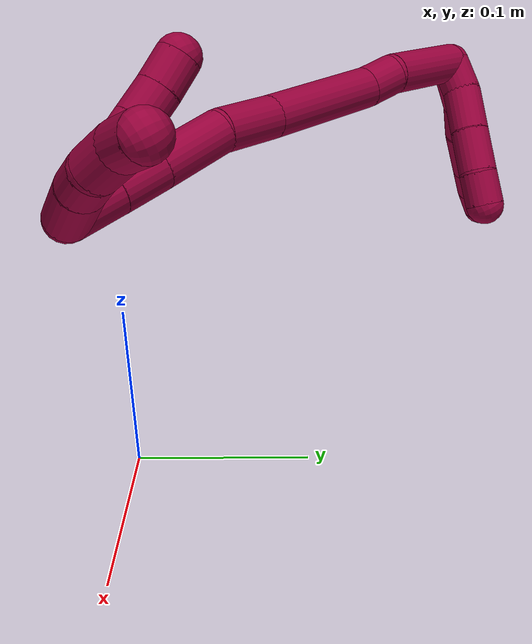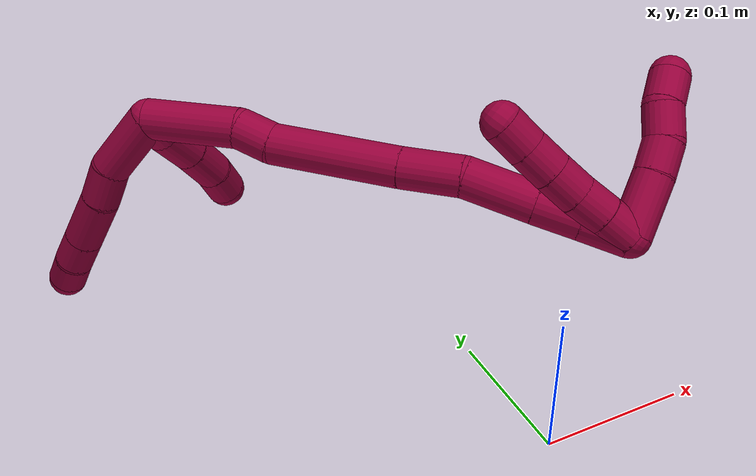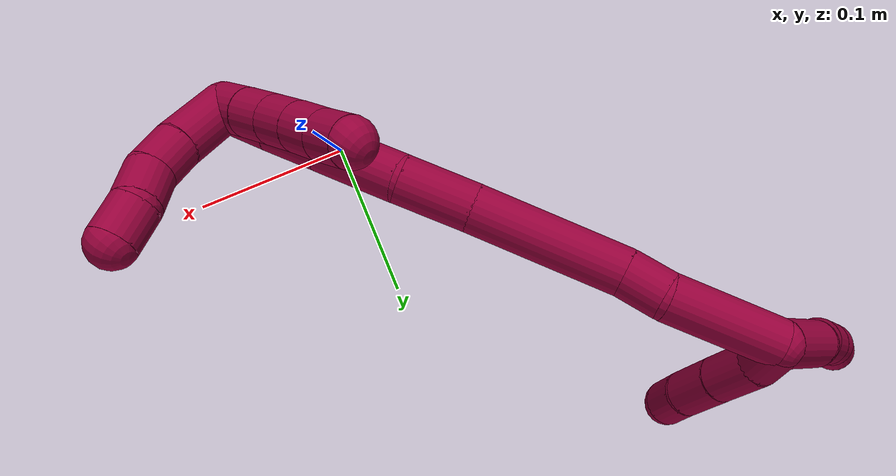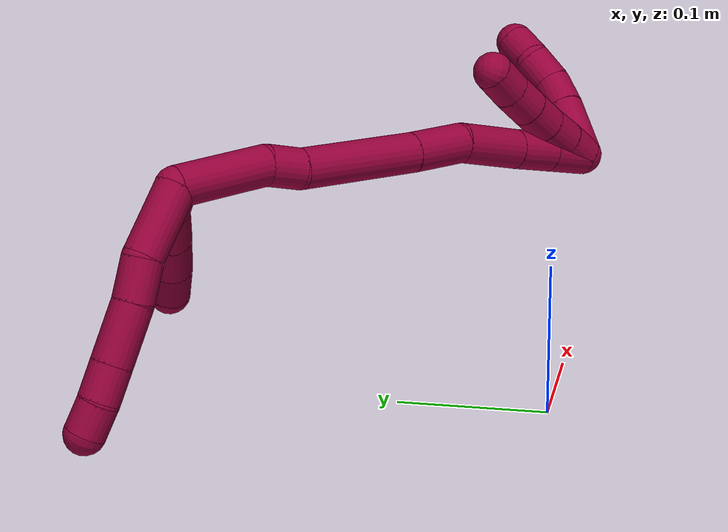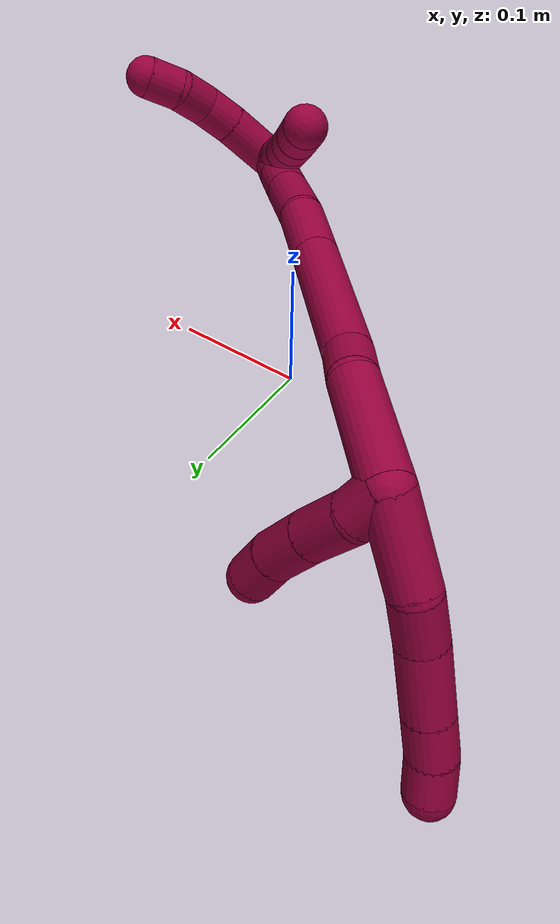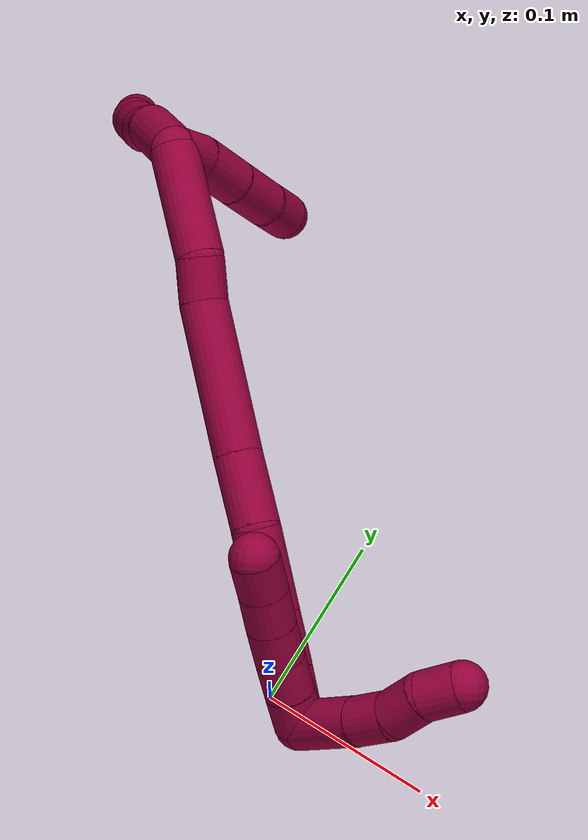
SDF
<sdf version="1.7">
 <world name="default">
  <model name="8">
   <static>0</static>
   <link name="8">
    <collision name="collision-cylinder-e_1_2_8">
     <pose>-0.013922 0.017207 0.004827 -1.29732 -0.661832 0.509562</pose>
     <geometry><cylinder><radius>0.0125</radius><length>0.045308</length></cylinder></geometry>
     <surface>
      <friction><ode><mu>1.16</mu><mu2>1.16</mu2><slip1>0</slip1><slip2>0</slip2></ode></friction>
      <contact><ode><kp>1e+06</kp><kd>1</kd><max_vel>0</max_vel><min_depth>0.001</min_depth></ode></contact>
     </surface>
    </collision>
    <visual name="visual-cylinder-e_1_2_8">
     <pose>-0.013922 0.017207 0.004827 -1.29732 -0.661832 0.509562</pose>
     <geometry><cylinder><radius>0.0125</radius><length>0.045308</length></cylinder></geometry>
     <material><ambient>0.584314 0 0.227451 1</ambient></material>
    </visual>
    <collision name="collision-cylinder-e_2_8_9">
     <pose>-0.034626 0.045399 0.009109 -1.6203 -0.55249 0.579031</pose>
     <geometry><cylinder><radius>0.0125</radius><length>0.025842</length></cylinder></geometry>
     <surface>
      <friction><ode><mu>1.16</mu><mu2>1.16</mu2><slip1>0</slip1><slip2>0</slip2></ode></friction>
      <contact><ode><kp>1e+06</kp><kd>1</kd><max_vel>0</max_vel><min_depth>0.001</min_depth></ode></contact>
     </surface>
    </collision>
    <visual name="visual-cylinder-e_2_8_9">
     <pose>-0.034626 0.045399 0.009109 -1.6203 -0.55249 0.579031</pose>
     <geometry><cylinder><radius>0.0125</radius><length>0.025842</length></cylinder></geometry>
     <material><ambient>0.584314 0 0.227451 1</ambient></material>
    </visual>
    <collision name="collision-cylinder-e_3_9_10">
     <pose>-0.050398 0.072285 0.009839 -1.49083 -0.513279 0.475319</pose>
     <geometry><cylinder><radius>0.0125</radius><length>0.036624</length></cylinder></geometry>
     <surface>
      <friction><ode><mu>1.16</mu><mu2>1.16</mu2><slip1>0</slip1><slip2>0</slip2></ode></friction>
      <contact><ode><kp>1e+06</kp><kd>1</kd><max_vel>0</max_vel><min_depth>0.001</min_depth></ode></contact>
     </surface>
    </collision>
    <visual name="visual-cylinder-e_3_9_10">
     <pose>-0.050398 0.072285 0.009839 -1.49083 -0.513279 0.475319</pose>
     <geometry><cylinder><radius>0.0125</radius><length>0.036624</length></cylinder></geometry>
     <material><ambient>0.584314 0 0.227451 1</ambient></material>
    </visual>
    <collision name="collision-cylinder-e_4_10_11">
     <pose>-0.06484 0.097829 0.011887 -1.49075 -0.513045 0.475064</pose>
     <geometry><cylinder><radius>0.0125</radius><length>0.022206</length></cylinder></geometry>
     <surface>
      <friction><ode><mu>1.16</mu><mu2>1.16</mu2><slip1>0</slip1><slip2>0</slip2></ode></friction>
      <contact><ode><kp>1e+06</kp><kd>1</kd><max_vel>0</max_vel><min_depth>0.001</min_depth></ode></contact>
     </surface>
    </collision>
    <visual name="visual-cylinder-e_4_10_11">
     <pose>-0.06484 0.097829 0.011887 -1.49075 -0.513045 0.475064</pose>
     <geometry><cylinder><radius>0.0125</radius><length>0.022206</length></cylinder></geometry>
     <material><ambient>0.584314 0 0.227451 1</ambient></material>
    </visual>
    <collision name="collision-cylinder-e_5_11_6">
     <pose>-0.073844 0.116776 0.013652 -1.46467 -0.363049 0.327112</pose>
     <geometry><cylinder><radius>0.0125</radius><length>0.020021</length></cylinder></geometry>
     <surface>
      <friction><ode><mu>1.16</mu><mu2>1.16</mu2><slip1>0</slip1><slip2>0</slip2></ode></friction>
      <contact><ode><kp>1e+06</kp><kd>1</kd><max_vel>0</max_vel><min_depth>0.001</min_depth></ode></contact>
     </surface>
    </collision>
    <visual name="visual-cylinder-e_5_11_6">
     <pose>-0.073844 0.116776 0.013652 -1.46467 -0.363049 0.327112</pose>
     <geometry><cylinder><radius>0.0125</radius><length>0.020021</length></cylinder></geometry>
     <material><ambient>0.584314 0 0.227451 1</ambient></material>
    </visual>
    <collision name="collision-cylinder-e_1_2_12">
     <pose>0.003181 0.00976 -0.001932 -1.76622 0.30941 -0.375229</pose>
     <geometry><cylinder><radius>0.0125</radius><length>0.020891</length></cylinder></geometry>
     <surface>
      <friction><ode><mu>1.16</mu><mu2>1.16</mu2><slip1>0</slip1><slip2>0</slip2></ode></friction>
      <contact><ode><kp>1e+06</kp><kd>1</kd><max_vel>0</max_vel><min_depth>0.001</min_depth></ode></contact>
     </surface>
    </collision>
    <visual name="visual-cylinder-e_1_2_12">
     <pose>0.003181 0.00976 -0.001932 -1.76622 0.30941 -0.375229</pose>
     <geometry><cylinder><radius>0.0125</radius><length>0.020891</length></cylinder></geometry>
     <material><ambient>0.584314 0 0.227451 1</ambient></material>
    </visual>
    <collision name="collision-cylinder-e_2_12_13">
     <pose>0.011496 0.03159 -0.009774 -2.02617 0.364958 -0.575262</pose>
     <geometry><cylinder><radius>0.0125</radius><length>0.028773</length></cylinder></geometry>
     <surface>
      <friction><ode><mu>1.16</mu><mu2>1.16</mu2><slip1>0</slip1><slip2>0</slip2></ode></friction>
      <contact><ode><kp>1e+06</kp><kd>1</kd><max_vel>0</max_vel><min_depth>0.001</min_depth></ode></contact>
     </surface>
    </collision>
    <visual name="visual-cylinder-e_2_12_13">
     <pose>0.011496 0.03159 -0.009774 -2.02617 0.364958 -0.575262</pose>
     <geometry><cylinder><radius>0.0125</radius><length>0.028773</length></cylinder></geometry>
     <material><ambient>0.584314 0 0.227451 1</ambient></material>
    </visual>
    <collision name="collision-cylinder-e_3_13_14">
     <pose>0.021063 0.055971 -0.021198 -1.99185 0.317469 -0.484478</pose>
     <geometry><cylinder><radius>0.0125</radius><length>0.028399</length></cylinder></geometry>
     <surface>
      <friction><ode><mu>1.16</mu><mu2>1.16</mu2><slip1>0</slip1><slip2>0</slip2></ode></friction>
      <contact><ode><kp>1e+06</kp><kd>1</kd><max_vel>0</max_vel><min_depth>0.001</min_depth></ode></contact>
     </surface>
    </collision>
    <visual name="visual-cylinder-e_3_13_14">
     <pose>0.021063 0.055971 -0.021198 -1.99185 0.317469 -0.484478</pose>
     <geometry><cylinder><radius>0.0125</radius><length>0.028399</length></cylinder></geometry>
     <material><ambient>0.584314 0 0.227451 1</ambient></material>
    </visual>
    <collision name="collision-cylinder-e_4_14_5">
     <pose>0.02755 0.078485 -0.030175 -1.89798 0.188439 -0.262216</pose>
     <geometry><cylinder><radius>0.0125</radius><length>0.021937</length></cylinder></geometry>
     <surface>
      <friction><ode><mu>1.16</mu><mu2>1.16</mu2><slip1>0</slip1><slip2>0</slip2></ode></friction>
      <contact><ode><kp>1e+06</kp><kd>1</kd><max_vel>0</max_vel><min_depth>0.001</min_depth></ode></contact>
     </surface>
    </collision>
    <visual name="visual-cylinder-e_4_14_5">
     <pose>0.02755 0.078485 -0.030175 -1.89798 0.188439 -0.262216</pose>
     <geometry><cylinder><radius>0.0125</radius><length>0.021937</length></cylinder></geometry>
     <material><ambient>0.584314 0 0.227451 1</ambient></material>
    </visual>
    <collision name="collision-cylinder-e_1_2_15">
     <pose>0.012105 -0.008295 -0.026339 2.83648 0.413149 1.87567</pose>
     <geometry><cylinder><radius>0.0125</radius><length>0.060302</length></cylinder></geometry>
     <surface>
      <friction><ode><mu>1.16</mu><mu2>1.16</mu2><slip1>0</slip1><slip2>0</slip2></ode></friction>
      <contact><ode><kp>1e+06</kp><kd>1</kd><max_vel>0</max_vel><min_depth>0.001</min_depth></ode></contact>
     </surface>
    </collision>
    <visual name="visual-cylinder-e_1_2_15">
     <pose>0.012105 -0.008295 -0.026339 2.83648 0.413149 1.87567</pose>
     <geometry><cylinder><radius>0.0125</radius><length>0.060302</length></cylinder></geometry>
     <material><ambient>0.584314 0 0.227451 1</ambient></material>
    </visual>
    <collision name="collision-cylinder-e_2_15_16">
     <pose>0.026281 -0.017406 -0.063804 3.0684 0.183471 2.38401</pose>
     <geometry><cylinder><radius>0.0125</radius><length>0.022693</length></cylinder></geometry>
     <surface>
      <friction><ode><mu>1.16</mu><mu2>1.16</mu2><slip1>0</slip1><slip2>0</slip2></ode></friction>
      <contact><ode><kp>1e+06</kp><kd>1</kd><max_vel>0</max_vel><min_depth>0.001</min_depth></ode></contact>
     </surface>
    </collision>
    <visual name="visual-cylinder-e_2_15_16">
     <pose>0.026281 -0.017406 -0.063804 3.0684 0.183471 2.38401</pose>
     <geometry><cylinder><radius>0.0125</radius><length>0.022693</length></cylinder></geometry>
     <material><ambient>0.584314 0 0.227451 1</ambient></material>
    </visual>
    <collision name="collision-cylinder-e_3_16_17">
     <pose>0.043053 -0.026497 -0.111077 2.91653 0.37746 2.07308</pose>
     <geometry><cylinder><radius>0.0125</radius><length>0.07978</length></cylinder></geometry>
     <surface>
      <friction><ode><mu>1.16</mu><mu2>1.16</mu2><slip1>0</slip1><slip2>0</slip2></ode></friction>
      <contact><ode><kp>1e+06</kp><kd>1</kd><max_vel>0</max_vel><min_depth>0.001</min_depth></ode></contact>
     </surface>
    </collision>
    <visual name="visual-cylinder-e_3_16_17">
     <pose>0.043053 -0.026497 -0.111077 2.91653 0.37746 2.07308</pose>
     <geometry><cylinder><radius>0.0125</radius><length>0.07978</length></cylinder></geometry>
     <material><ambient>0.584314 0 0.227451 1</ambient></material>
    </visual>
    <collision name="collision-cylinder-e_4_17_18">
     <pose>0.065184 -0.039135 -0.163886 2.88553 0.407227 2.02655</pose>
     <geometry><cylinder><radius>0.0125</radius><length>0.037517</length></cylinder></geometry>
     <surface>
      <friction><ode><mu>1.16</mu><mu2>1.16</mu2><slip1>0</slip1><slip2>0</slip2></ode></friction>
      <contact><ode><kp>1e+06</kp><kd>1</kd><max_vel>0</max_vel><min_depth>0.001</min_depth></ode></contact>
     </surface>
    </collision>
    <visual name="visual-cylinder-e_4_17_18">
     <pose>0.065184 -0.039135 -0.163886 2.88553 0.407227 2.02655</pose>
     <geometry><cylinder><radius>0.0125</radius><length>0.037517</length></cylinder></geometry>
     <material><ambient>0.584314 0 0.227451 1</ambient></material>
    </visual>
    <collision name="collision-cylinder-e_5_18_19">
     <pose>0.079098 -0.043767 -0.201233 3.12858 0.303756 3.0566</pose>
     <geometry><cylinder><radius>0.0125</radius><length>0.043356</length></cylinder></geometry>
     <surface>
      <friction><ode><mu>1.16</mu><mu2>1.16</mu2><slip1>0</slip1><slip2>0</slip2></ode></friction>
      <contact><ode><kp>1e+06</kp><kd>1</kd><max_vel>0</max_vel><min_depth>0.001</min_depth></ode></contact>
     </surface>
    </collision>
    <visual name="visual-cylinder-e_5_18_19">
     <pose>0.079098 -0.043767 -0.201233 3.12858 0.303756 3.0566</pose>
     <geometry><cylinder><radius>0.0125</radius><length>0.043356</length></cylinder></geometry>
     <material><ambient>0.584314 0 0.227451 1</ambient></material>
    </visual>
    <collision name="collision-cylinder-e_6_19_20">
     <pose>0.089928 -0.044478 -0.235175 3.10829 0.31656 2.93368</pose>
     <geometry><cylinder><radius>0.0125</radius><length>0.027919</length></cylinder></geometry>
     <surface>
      <friction><ode><mu>1.16</mu><mu2>1.16</mu2><slip1>0</slip1><slip2>0</slip2></ode></friction>
      <contact><ode><kp>1e+06</kp><kd>1</kd><max_vel>0</max_vel><min_depth>0.001</min_depth></ode></contact>
     </surface>
    </collision>
    <visual name="visual-cylinder-e_6_19_20">
     <pose>0.089928 -0.044478 -0.235175 3.10829 0.31656 2.93368</pose>
     <geometry><cylinder><radius>0.0125</radius><length>0.027919</length></cylinder></geometry>
     <material><ambient>0.584314 0 0.227451 1</ambient></material>
    </visual>
    <collision name="collision-cylinder-e_7_20_1">
     <pose>0.098478 -0.045462 -0.262003 3.10168 0.300276 2.87923</pose>
     <geometry><cylinder><radius>0.0125</radius><length>0.028433</length></cylinder></geometry>
     <surface>
      <friction><ode><mu>1.16</mu><mu2>1.16</mu2><slip1>0</slip1><slip2>0</slip2></ode></friction>
      <contact><ode><kp>1e+06</kp><kd>1</kd><max_vel>0</max_vel><min_depth>0.001</min_depth></ode></contact>
     </surface>
    </collision>
    <visual name="visual-cylinder-e_7_20_1">
     <pose>0.098478 -0.045462 -0.262003 3.10168 0.300276 2.87923</pose>
     <geometry><cylinder><radius>0.0125</radius><length>0.028433</length></cylinder></geometry>
     <material><ambient>0.584314 0 0.227451 1</ambient></material>
    </visual>
    <collision name="collision-cylinder-e_1_1_21">
     <pose>0.101024 -0.050095 -0.2666 0.427836 -0.166667 -0.036287</pose>
     <geometry><cylinder><radius>0.0125</radius><length>0.02</length></cylinder></geometry>
     <surface>
      <friction><ode><mu>1.16</mu><mu2>1.16</mu2><slip1>0</slip1><slip2>0</slip2></ode></friction>
      <contact><ode><kp>1e+06</kp><kd>1</kd><max_vel>0</max_vel><min_depth>0.001</min_depth></ode></contact>
     </surface>
    </collision>
    <visual name="visual-cylinder-e_1_1_21">
     <pose>0.101024 -0.050095 -0.2666 0.427836 -0.166667 -0.036287</pose>
     <geometry><cylinder><radius>0.0125</radius><length>0.02</length></cylinder></geometry>
     <material><ambient>0.584314 0 0.227451 1</ambient></material>
    </visual>
    <collision name="collision-cylinder-e_2_21_22">
     <pose>0.097636 -0.057947 -0.248524 0.391677 -0.173784 -0.034559</pose>
     <geometry><cylinder><radius>0.0125</radius><length>0.02</length></cylinder></geometry>
     <surface>
      <friction><ode><mu>1.16</mu><mu2>1.16</mu2><slip1>0</slip1><slip2>0</slip2></ode></friction>
      <contact><ode><kp>1e+06</kp><kd>1</kd><max_vel>0</max_vel><min_depth>0.001</min_depth></ode></contact>
     </surface>
    </collision>
    <visual name="visual-cylinder-e_2_21_22">
     <pose>0.097636 -0.057947 -0.248524 0.391677 -0.173784 -0.034559</pose>
     <geometry><cylinder><radius>0.0125</radius><length>0.02</length></cylinder></geometry>
     <material><ambient>0.584314 0 0.227451 1</ambient></material>
    </visual>
    <collision name="collision-cylinder-e_3_22_23">
     <pose>0.094634 -0.065969 -0.230465 0.444182 -0.127701 -0.028874</pose>
     <geometry><cylinder><radius>0.0125</radius><length>0.02</length></cylinder></geometry>
     <surface>
      <friction><ode><mu>1.16</mu><mu2>1.16</mu2><slip1>0</slip1><slip2>0</slip2></ode></friction>
      <contact><ode><kp>1e+06</kp><kd>1</kd><max_vel>0</max_vel><min_depth>0.001</min_depth></ode></contact>
     </surface>
    </collision>
    <visual name="visual-cylinder-e_3_22_23">
     <pose>0.094634 -0.065969 -0.230465 0.444182 -0.127701 -0.028874</pose>
     <geometry><cylinder><radius>0.0125</radius><length>0.02</length></cylinder></geometry>
     <material><ambient>0.584314 0 0.227451 1</ambient></material>
    </visual>
    <collision name="collision-cylinder-e_4_23_24">
     <pose>0.09237 -0.074472 -0.212507 0.440337 -0.099165 -0.02221</pose>
     <geometry><cylinder><radius>0.0125</radius><length>0.02</length></cylinder></geometry>
     <surface>
      <friction><ode><mu>1.16</mu><mu2>1.16</mu2><slip1>0</slip1><slip2>0</slip2></ode></friction>
      <contact><ode><kp>1e+06</kp><kd>1</kd><max_vel>0</max_vel><min_depth>0.001</min_depth></ode></contact>
     </surface>
    </collision>
    <visual name="visual-cylinder-e_4_23_24">
     <pose>0.09237 -0.074472 -0.212507 0.440337 -0.099165 -0.02221</pose>
     <geometry><cylinder><radius>0.0125</radius><length>0.02</length></cylinder></geometry>
     <material><ambient>0.584314 0 0.227451 1</ambient></material>
    </visual>
    <collision name="collision-cylinder-e_5_24_4">
     <pose>0.090361 -0.083465 -0.194765 0.497853 -0.102043 -0.02596</pose>
     <geometry><cylinder><radius>0.0125</radius><length>0.02</length></cylinder></geometry>
     <surface>
      <friction><ode><mu>1.16</mu><mu2>1.16</mu2><slip1>0</slip1><slip2>0</slip2></ode></friction>
      <contact><ode><kp>1e+06</kp><kd>1</kd><max_vel>0</max_vel><min_depth>0.001</min_depth></ode></contact>
     </surface>
    </collision>
    <visual name="visual-cylinder-e_5_24_4">
     <pose>0.090361 -0.083465 -0.194765 0.497853 -0.102043 -0.02596</pose>
     <geometry><cylinder><radius>0.0125</radius><length>0.02</length></cylinder></geometry>
     <material><ambient>0.584314 0 0.227451 1</ambient></material>
    </visual>
    <collision name="collision-cylinder-e_1_1_25">
     <pose>0.119576 -0.052528 -0.270436 0.903765 1.11391 0.587045</pose>
     <geometry><cylinder><radius>0.0125</radius><length>0.037646</length></cylinder></geometry>
     <surface>
      <friction><ode><mu>1.16</mu><mu2>1.16</mu2><slip1>0</slip1><slip2>0</slip2></ode></friction>
      <contact><ode><kp>1e+06</kp><kd>1</kd><max_vel>0</max_vel><min_depth>0.001</min_depth></ode></contact>
     </surface>
    </collision>
    <visual name="visual-cylinder-e_1_1_25">
     <pose>0.119576 -0.052528 -0.270436 0.903765 1.11391 0.587045</pose>
     <geometry><cylinder><radius>0.0125</radius><length>0.037646</length></cylinder></geometry>
     <material><ambient>0.584314 0 0.227451 1</ambient></material>
    </visual>
    <collision name="collision-cylinder-e_2_25_26">
     <pose>0.145829 -0.062002 -0.261703 0.687086 1.10965 0.436356</pose>
     <geometry><cylinder><radius>0.0125</radius><length>0.020905</length></cylinder></geometry>
     <surface>
      <friction><ode><mu>1.16</mu><mu2>1.16</mu2><slip1>0</slip1><slip2>0</slip2></ode></friction>
      <contact><ode><kp>1e+06</kp><kd>1</kd><max_vel>0</max_vel><min_depth>0.001</min_depth></ode></contact>
     </surface>
    </collision>
    <visual name="visual-cylinder-e_2_25_26">
     <pose>0.145829 -0.062002 -0.261703 0.687086 1.10965 0.436356</pose>
     <geometry><cylinder><radius>0.0125</radius><length>0.020905</length></cylinder></geometry>
     <material><ambient>0.584314 0 0.227451 1</ambient></material>
    </visual>
    <collision name="collision-cylinder-e_3_26_27">
     <pose>0.163117 -0.067365 -0.251745 0.36249 0.861504 0.168027</pose>
     <geometry><cylinder><radius>0.0125</radius><length>0.020895</length></cylinder></geometry>
     <surface>
      <friction><ode><mu>1.16</mu><mu2>1.16</mu2><slip1>0</slip1><slip2>0</slip2></ode></friction>
      <contact><ode><kp>1e+06</kp><kd>1</kd><max_vel>0</max_vel><min_depth>0.001</min_depth></ode></contact>
     </surface>
    </collision>
    <visual name="visual-cylinder-e_3_26_27">
     <pose>0.163117 -0.067365 -0.251745 0.36249 0.861504 0.168027</pose>
     <geometry><cylinder><radius>0.0125</radius><length>0.020895</length></cylinder></geometry>
     <material><ambient>0.584314 0 0.227451 1</ambient></material>
    </visual>
    <collision name="collision-cylinder-e_4_27_3">
     <pose>0.18052 -0.070169 -0.241422 0.098344 1.17314 0.065388</pose>
     <geometry><cylinder><radius>0.0125</radius><length>0.020554</length></cylinder></geometry>
     <surface>
      <friction><ode><mu>1.16</mu><mu2>1.16</mu2><slip1>0</slip1><slip2>0</slip2></ode></friction>
      <contact><ode><kp>1e+06</kp><kd>1</kd><max_vel>0</max_vel><min_depth>0.001</min_depth></ode></contact>
     </surface>
    </collision>
    <visual name="visual-cylinder-e_4_27_3">
     <pose>0.18052 -0.070169 -0.241422 0.098344 1.17314 0.065388</pose>
     <geometry><cylinder><radius>0.0125</radius><length>0.020554</length></cylinder></geometry>
     <material><ambient>0.584314 0 0.227451 1</ambient></material>
    </visual>
    <collision name="collision-sphere-3">
     <pose>0.189995 -0.070559 -0.237461 0 -0 0</pose>
     <geometry><sphere><radius>0.0125</radius></sphere></geometry>
     <surface>
      <friction><ode><mu>1.16</mu><mu2>1.16</mu2><slip1>0</slip1><slip2>0</slip2></ode></friction>
      <contact><ode><kp>1e+06</kp><kd>1</kd><max_vel>0</max_vel><min_depth>0.001</min_depth></ode></contact>
     </surface>
    </collision>
    <visual name="visual-sphere-3">
     <pose>0.189995 -0.070559 -0.237461 0 -0 0</pose>
     <geometry><sphere><radius>0.0125</radius></sphere></geometry>
     <material><ambient>0.584314 0 0.227451 1</ambient></material>
    </visual>
    <collision name="collision-sphere-27">
     <pose>0.171045 -0.069778 -0.245382 0 -0 0</pose>
     <geometry><sphere><radius>0.0125</radius></sphere></geometry>
     <surface>
      <friction><ode><mu>1.16</mu><mu2>1.16</mu2><slip1>0</slip1><slip2>0</slip2></ode></friction>
      <contact><ode><kp>1e+06</kp><kd>1</kd><max_vel>0</max_vel><min_depth>0.001</min_depth></ode></contact>
     </surface>
    </collision>
    <visual name="visual-sphere-27">
     <pose>0.171045 -0.069778 -0.245382 0 -0 0</pose>
     <geometry><sphere><radius>0.0125</radius></sphere></geometry>
     <material><ambient>0.584314 0 0.227451 1</ambient></material>
    </visual>
    <collision name="collision-sphere-26">
     <pose>0.155189 -0.064952 -0.258107 0 -0 0</pose>
     <geometry><sphere><radius>0.0125</radius></sphere></geometry>
     <surface>
      <friction><ode><mu>1.16</mu><mu2>1.16</mu2><slip1>0</slip1><slip2>0</slip2></ode></friction>
      <contact><ode><kp>1e+06</kp><kd>1</kd><max_vel>0</max_vel><min_depth>0.001</min_depth></ode></contact>
     </surface>
    </collision>
    <visual name="visual-sphere-26">
     <pose>0.155189 -0.064952 -0.258107 0 -0 0</pose>
     <geometry><sphere><radius>0.0125</radius></sphere></geometry>
     <material><ambient>0.584314 0 0.227451 1</ambient></material>
    </visual>
    <collision name="collision-sphere-25">
     <pose>0.136468 -0.059052 -0.265298 0 -0 0</pose>
     <geometry><sphere><radius>0.0125</radius></sphere></geometry>
     <surface>
      <friction><ode><mu>1.16</mu><mu2>1.16</mu2><slip1>0</slip1><slip2>0</slip2></ode></friction>
      <contact><ode><kp>1e+06</kp><kd>1</kd><max_vel>0</max_vel><min_depth>0.001</min_depth></ode></contact>
     </surface>
    </collision>
    <visual name="visual-sphere-25">
     <pose>0.136468 -0.059052 -0.265298 0 -0 0</pose>
     <geometry><sphere><radius>0.0125</radius></sphere></geometry>
     <material><ambient>0.584314 0 0.227451 1</ambient></material>
    </visual>
    <collision name="collision-sphere-4">
     <pose>0.089343 -0.088215 -0.186024 0 -0 0</pose>
     <geometry><sphere><radius>0.0125</radius></sphere></geometry>
     <surface>
      <friction><ode><mu>1.16</mu><mu2>1.16</mu2><slip1>0</slip1><slip2>0</slip2></ode></friction>
      <contact><ode><kp>1e+06</kp><kd>1</kd><max_vel>0</max_vel><min_depth>0.001</min_depth></ode></contact>
     </surface>
    </collision>
    <visual name="visual-sphere-4">
     <pose>0.089343 -0.088215 -0.186024 0 -0 0</pose>
     <geometry><sphere><radius>0.0125</radius></sphere></geometry>
     <material><ambient>0.584314 0 0.227451 1</ambient></material>
    </visual>
    <collision name="collision-sphere-24">
     <pose>0.09138 -0.078714 -0.203505 0 -0 0</pose>
     <geometry><sphere><radius>0.0125</radius></sphere></geometry>
     <surface>
      <friction><ode><mu>1.16</mu><mu2>1.16</mu2><slip1>0</slip1><slip2>0</slip2></ode></friction>
      <contact><ode><kp>1e+06</kp><kd>1</kd><max_vel>0</max_vel><min_depth>0.001</min_depth></ode></contact>
     </surface>
    </collision>
    <visual name="visual-sphere-24">
     <pose>0.09138 -0.078714 -0.203505 0 -0 0</pose>
     <geometry><sphere><radius>0.0125</radius></sphere></geometry>
     <material><ambient>0.584314 0 0.227451 1</ambient></material>
    </visual>
    <collision name="collision-sphere-23">
     <pose>0.09336 -0.070231 -0.221509 0 -0 0</pose>
     <geometry><sphere><radius>0.0125</radius></sphere></geometry>
     <surface>
      <friction><ode><mu>1.16</mu><mu2>1.16</mu2><slip1>0</slip1><slip2>0</slip2></ode></friction>
      <contact><ode><kp>1e+06</kp><kd>1</kd><max_vel>0</max_vel><min_depth>0.001</min_depth></ode></contact>
     </surface>
    </collision>
    <visual name="visual-sphere-23">
     <pose>0.09336 -0.070231 -0.221509 0 -0 0</pose>
     <geometry><sphere><radius>0.0125</radius></sphere></geometry>
     <material><ambient>0.584314 0 0.227451 1</ambient></material>
    </visual>
    <collision name="collision-sphere-22">
     <pose>0.095907 -0.061707 -0.239421 0 -0 0</pose>
     <geometry><sphere><radius>0.0125</radius></sphere></geometry>
     <surface>
      <friction><ode><mu>1.16</mu><mu2>1.16</mu2><slip1>0</slip1><slip2>0</slip2></ode></friction>
      <contact><ode><kp>1e+06</kp><kd>1</kd><max_vel>0</max_vel><min_depth>0.001</min_depth></ode></contact>
     </surface>
    </collision>
    <visual name="visual-sphere-22">
     <pose>0.095907 -0.061707 -0.239421 0 -0 0</pose>
     <geometry><sphere><radius>0.0125</radius></sphere></geometry>
     <material><ambient>0.584314 0 0.227451 1</ambient></material>
    </visual>
    <collision name="collision-sphere-21">
     <pose>0.099365 -0.054187 -0.257628 0 -0 0</pose>
     <geometry><sphere><radius>0.0125</radius></sphere></geometry>
     <surface>
      <friction><ode><mu>1.16</mu><mu2>1.16</mu2><slip1>0</slip1><slip2>0</slip2></ode></friction>
      <contact><ode><kp>1e+06</kp><kd>1</kd><max_vel>0</max_vel><min_depth>0.001</min_depth></ode></contact>
     </surface>
    </collision>
    <visual name="visual-sphere-21">
     <pose>0.099365 -0.054187 -0.257628 0 -0 0</pose>
     <geometry><sphere><radius>0.0125</radius></sphere></geometry>
     <material><ambient>0.584314 0 0.227451 1</ambient></material>
    </visual>
    <collision name="collision-sphere-1">
     <pose>0.102683 -0.046004 -0.275573 0 -0 0</pose>
     <geometry><sphere><radius>0.0125</radius></sphere></geometry>
     <surface>
      <friction><ode><mu>1.16</mu><mu2>1.16</mu2><slip1>0</slip1><slip2>0</slip2></ode></friction>
      <contact><ode><kp>1e+06</kp><kd>1</kd><max_vel>0</max_vel><min_depth>0.001</min_depth></ode></contact>
     </surface>
    </collision>
    <visual name="visual-sphere-1">
     <pose>0.102683 -0.046004 -0.275573 0 -0 0</pose>
     <geometry><sphere><radius>0.0125</radius></sphere></geometry>
     <material><ambient>0.584314 0 0.227451 1</ambient></material>
    </visual>
    <collision name="collision-sphere-6">
     <pose>-0.077399 0.126082 0.014643 0 -0 0</pose>
     <geometry><sphere><radius>0.0125</radius></sphere></geometry>
     <surface>
      <friction><ode><mu>1.16</mu><mu2>1.16</mu2><slip1>0</slip1><slip2>0</slip2></ode></friction>
      <contact><ode><kp>1e+06</kp><kd>1</kd><max_vel>0</max_vel><min_depth>0.001</min_depth></ode></contact>
     </surface>
    </collision>
    <visual name="visual-sphere-6">
     <pose>-0.077399 0.126082 0.014643 0 -0 0</pose>
     <geometry><sphere><radius>0.0125</radius></sphere></geometry>
     <material><ambient>0.584314 0 0.227451 1</ambient></material>
    </visual>
    <collision name="collision-sphere-11">
     <pose>-0.070289 0.107471 0.01266 0 -0 0</pose>
     <geometry><sphere><radius>0.0125</radius></sphere></geometry>
     <surface>
      <friction><ode><mu>1.16</mu><mu2>1.16</mu2><slip1>0</slip1><slip2>0</slip2></ode></friction>
      <contact><ode><kp>1e+06</kp><kd>1</kd><max_vel>0</max_vel><min_depth>0.001</min_depth></ode></contact>
     </surface>
    </collision>
    <visual name="visual-sphere-11">
     <pose>-0.070289 0.107471 0.01266 0 -0 0</pose>
     <geometry><sphere><radius>0.0125</radius></sphere></geometry>
     <material><ambient>0.584314 0 0.227451 1</ambient></material>
    </visual>
    <collision name="collision-sphere-10">
     <pose>-0.05939 0.088186 0.011113 0 -0 0</pose>
     <geometry><sphere><radius>0.0125</radius></sphere></geometry>
     <surface>
      <friction><ode><mu>1.16</mu><mu2>1.16</mu2><slip1>0</slip1><slip2>0</slip2></ode></friction>
      <contact><ode><kp>1e+06</kp><kd>1</kd><max_vel>0</max_vel><min_depth>0.001</min_depth></ode></contact>
     </surface>
    </collision>
    <visual name="visual-sphere-10">
     <pose>-0.05939 0.088186 0.011113 0 -0 0</pose>
     <geometry><sphere><radius>0.0125</radius></sphere></geometry>
     <material><ambient>0.584314 0 0.227451 1</ambient></material>
    </visual>
    <collision name="collision-sphere-9">
     <pose>-0.041407 0.056384 0.008565 0 -0 0</pose>
     <geometry><sphere><radius>0.0125</radius></sphere></geometry>
     <surface>
      <friction><ode><mu>1.16</mu><mu2>1.16</mu2><slip1>0</slip1><slip2>0</slip2></ode></friction>
      <contact><ode><kp>1e+06</kp><kd>1</kd><max_vel>0</max_vel><min_depth>0.001</min_depth></ode></contact>
     </surface>
    </collision>
    <visual name="visual-sphere-9">
     <pose>-0.041407 0.056384 0.008565 0 -0 0</pose>
     <geometry><sphere><radius>0.0125</radius></sphere></geometry>
     <material><ambient>0.584314 0 0.227451 1</ambient></material>
    </visual>
    <collision name="collision-sphere-2">
     <geometry><sphere><radius>0.0125</radius></sphere></geometry>
     <surface>
      <friction><ode><mu>1.16</mu><mu2>1.16</mu2><slip1>0</slip1><slip2>0</slip2></ode></friction>
      <contact><ode><kp>1e+06</kp><kd>1</kd><max_vel>0</max_vel><min_depth>0.001</min_depth></ode></contact>
     </surface>
    </collision>
    <visual name="visual-sphere-2">
     <geometry><sphere><radius>0.0125</radius></sphere></geometry>
     <material><ambient>0.584314 0 0.227451 1</ambient></material>
    </visual>
    <collision name="collision-sphere-19">
     <pose>0.085582 -0.044036 -0.221917 0 -0 0</pose>
     <geometry><sphere><radius>0.0125</radius></sphere></geometry>
     <surface>
      <friction><ode><mu>1.16</mu><mu2>1.16</mu2><slip1>0</slip1><slip2>0</slip2></ode></friction>
      <contact><ode><kp>1e+06</kp><kd>1</kd><max_vel>0</max_vel><min_depth>0.001</min_depth></ode></contact>
     </surface>
    </collision>
    <visual name="visual-sphere-19">
     <pose>0.085582 -0.044036 -0.221917 0 -0 0</pose>
     <geometry><sphere><radius>0.0125</radius></sphere></geometry>
     <material><ambient>0.584314 0 0.227451 1</ambient></material>
    </visual>
    <collision name="collision-sphere-8">
     <pose>-0.027844 0.034414 0.009653 0 -0 0</pose>
     <geometry><sphere><radius>0.0125</radius></sphere></geometry>
     <surface>
      <friction><ode><mu>1.16</mu><mu2>1.16</mu2><slip1>0</slip1><slip2>0</slip2></ode></friction>
      <contact><ode><kp>1e+06</kp><kd>1</kd><max_vel>0</max_vel><min_depth>0.001</min_depth></ode></contact>
     </surface>
    </collision>
    <visual name="visual-sphere-8">
     <pose>-0.027844 0.034414 0.009653 0 -0 0</pose>
     <geometry><sphere><radius>0.0125</radius></sphere></geometry>
     <material><ambient>0.584314 0 0.227451 1</ambient></material>
    </visual>
    <collision name="collision-sphere-12">
     <pose>0.006361 0.01952 -0.003864 0 -0 0</pose>
     <geometry><sphere><radius>0.0125</radius></sphere></geometry>
     <surface>
      <friction><ode><mu>1.16</mu><mu2>1.16</mu2><slip1>0</slip1><slip2>0</slip2></ode></friction>
      <contact><ode><kp>1e+06</kp><kd>1</kd><max_vel>0</max_vel><min_depth>0.001</min_depth></ode></contact>
     </surface>
    </collision>
    <visual name="visual-sphere-12">
     <pose>0.006361 0.01952 -0.003864 0 -0 0</pose>
     <geometry><sphere><radius>0.0125</radius></sphere></geometry>
     <material><ambient>0.584314 0 0.227451 1</ambient></material>
    </visual>
    <collision name="collision-sphere-13">
     <pose>0.016631 0.043659 -0.015685 0 -0 0</pose>
     <geometry><sphere><radius>0.0125</radius></sphere></geometry>
     <surface>
      <friction><ode><mu>1.16</mu><mu2>1.16</mu2><slip1>0</slip1><slip2>0</slip2></ode></friction>
      <contact><ode><kp>1e+06</kp><kd>1</kd><max_vel>0</max_vel><min_depth>0.001</min_depth></ode></contact>
     </surface>
    </collision>
    <visual name="visual-sphere-13">
     <pose>0.016631 0.043659 -0.015685 0 -0 0</pose>
     <geometry><sphere><radius>0.0125</radius></sphere></geometry>
     <material><ambient>0.584314 0 0.227451 1</ambient></material>
    </visual>
    <collision name="collision-sphere-14">
     <pose>0.025496 0.068282 -0.026712 0 -0 0</pose>
     <geometry><sphere><radius>0.0125</radius></sphere></geometry>
     <surface>
      <friction><ode><mu>1.16</mu><mu2>1.16</mu2><slip1>0</slip1><slip2>0</slip2></ode></friction>
      <contact><ode><kp>1e+06</kp><kd>1</kd><max_vel>0</max_vel><min_depth>0.001</min_depth></ode></contact>
     </surface>
    </collision>
    <visual name="visual-sphere-14">
     <pose>0.025496 0.068282 -0.026712 0 -0 0</pose>
     <geometry><sphere><radius>0.0125</radius></sphere></geometry>
     <material><ambient>0.584314 0 0.227451 1</ambient></material>
    </visual>
    <collision name="collision-sphere-5">
     <pose>0.029605 0.088688 -0.033637 0 -0 0</pose>
     <geometry><sphere><radius>0.0125</radius></sphere></geometry>
     <surface>
      <friction><ode><mu>1.16</mu><mu2>1.16</mu2><slip1>0</slip1><slip2>0</slip2></ode></friction>
      <contact><ode><kp>1e+06</kp><kd>1</kd><max_vel>0</max_vel><min_depth>0.001</min_depth></ode></contact>
     </surface>
    </collision>
    <visual name="visual-sphere-5">
     <pose>0.029605 0.088688 -0.033637 0 -0 0</pose>
     <geometry><sphere><radius>0.0125</radius></sphere></geometry>
     <material><ambient>0.584314 0 0.227451 1</ambient></material>
    </visual>
    <collision name="collision-sphere-15">
     <pose>0.024211 -0.01659 -0.052677 0 -0 0</pose>
     <geometry><sphere><radius>0.0125</radius></sphere></geometry>
     <surface>
      <friction><ode><mu>1.16</mu><mu2>1.16</mu2><slip1>0</slip1><slip2>0</slip2></ode></friction>
      <contact><ode><kp>1e+06</kp><kd>1</kd><max_vel>0</max_vel><min_depth>0.001</min_depth></ode></contact>
     </surface>
    </collision>
    <visual name="visual-sphere-15">
     <pose>0.024211 -0.01659 -0.052677 0 -0 0</pose>
     <geometry><sphere><radius>0.0125</radius></sphere></geometry>
     <material><ambient>0.584314 0 0.227451 1</ambient></material>
    </visual>
    <collision name="collision-sphere-16">
     <pose>0.028351 -0.018222 -0.07493 0 -0 0</pose>
     <geometry><sphere><radius>0.0125</radius></sphere></geometry>
     <surface>
      <friction><ode><mu>1.16</mu><mu2>1.16</mu2><slip1>0</slip1><slip2>0</slip2></ode></friction>
      <contact><ode><kp>1e+06</kp><kd>1</kd><max_vel>0</max_vel><min_depth>0.001</min_depth></ode></contact>
     </surface>
    </collision>
    <visual name="visual-sphere-16">
     <pose>0.028351 -0.018222 -0.07493 0 -0 0</pose>
     <geometry><sphere><radius>0.0125</radius></sphere></geometry>
     <material><ambient>0.584314 0 0.227451 1</ambient></material>
    </visual>
    <collision name="collision-sphere-17">
     <pose>0.057755 -0.034773 -0.147223 0 -0 0</pose>
     <geometry><sphere><radius>0.0125</radius></sphere></geometry>
     <surface>
      <friction><ode><mu>1.16</mu><mu2>1.16</mu2><slip1>0</slip1><slip2>0</slip2></ode></friction>
      <contact><ode><kp>1e+06</kp><kd>1</kd><max_vel>0</max_vel><min_depth>0.001</min_depth></ode></contact>
     </surface>
    </collision>
    <visual name="visual-sphere-17">
     <pose>0.057755 -0.034773 -0.147223 0 -0 0</pose>
     <geometry><sphere><radius>0.0125</radius></sphere></geometry>
     <material><ambient>0.584314 0 0.227451 1</ambient></material>
    </visual>
    <collision name="collision-sphere-18">
     <pose>0.072614 -0.043498 -0.180549 0 -0 0</pose>
     <geometry><sphere><radius>0.0125</radius></sphere></geometry>
     <surface>
      <friction><ode><mu>1.16</mu><mu2>1.16</mu2><slip1>0</slip1><slip2>0</slip2></ode></friction>
      <contact><ode><kp>1e+06</kp><kd>1</kd><max_vel>0</max_vel><min_depth>0.001</min_depth></ode></contact>
     </surface>
    </collision>
    <visual name="visual-sphere-18">
     <pose>0.072614 -0.043498 -0.180549 0 -0 0</pose>
     <geometry><sphere><radius>0.0125</radius></sphere></geometry>
     <material><ambient>0.584314 0 0.227451 1</ambient></material>
    </visual>
    <collision name="collision-sphere-20">
     <pose>0.094273 -0.04492 -0.248434 0 -0 0</pose>
     <geometry><sphere><radius>0.0125</radius></sphere></geometry>
     <surface>
      <friction><ode><mu>1.16</mu><mu2>1.16</mu2><slip1>0</slip1><slip2>0</slip2></ode></friction>
      <contact><ode><kp>1e+06</kp><kd>1</kd><max_vel>0</max_vel><min_depth>0.001</min_depth></ode></contact>
     </surface>
    </collision>
    <visual name="visual-sphere-20">
     <pose>0.094273 -0.04492 -0.248434 0 -0 0</pose>
     <geometry><sphere><radius>0.0125</radius></sphere></geometry>
     <material><ambient>0.584314 0 0.227451 1</ambient></material>
    </visual>
    <inertial>
     <pose>0.047262 -0.01085 -0.119935 0 -0 0</pose>
     <mass>0.75</mass>
     <inertia>
      <ixx>7.1e-05</ixx>
      <ixy>0</ixy>
      <ixz>0</ixz>
      <iyy>0.000151</iyy>
      <iyz>0</iyz>
      <izz>-4.7e-05</izz>
     </inertia>
    </inertial>
   </link>
   <pose>-0.180552 0.196604 0.188488 -1.20995 -0.312737 0.380815</pose>
  </model>
 </world>
</sdf>
